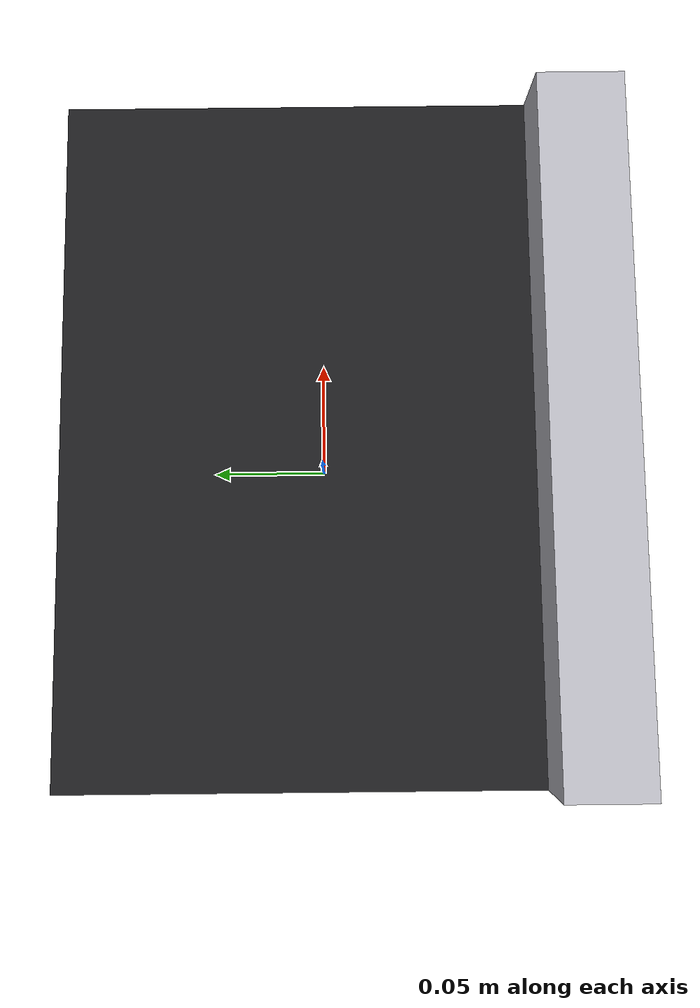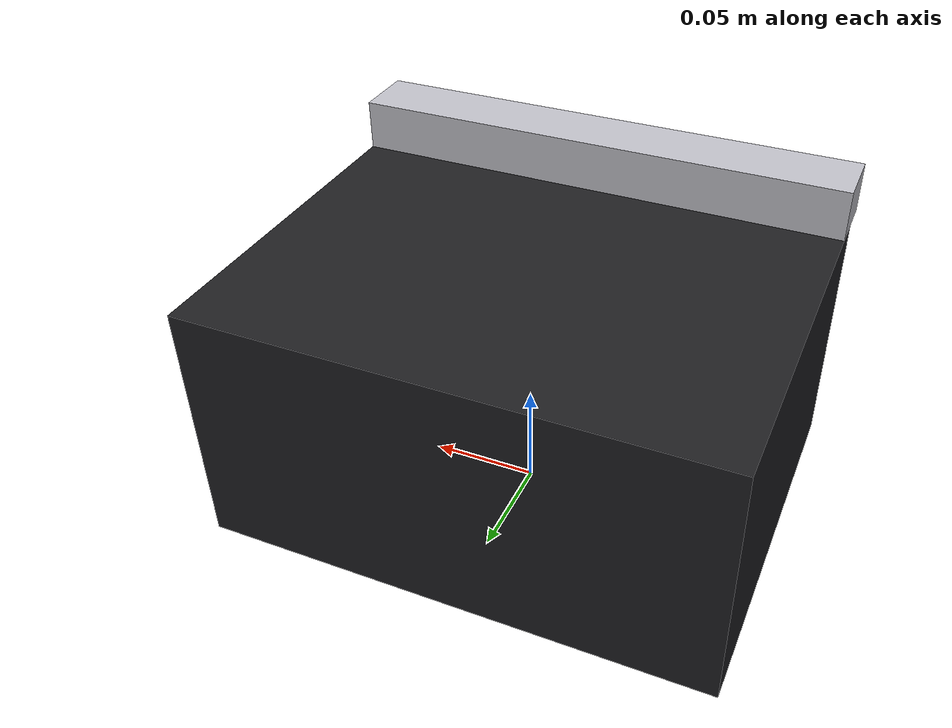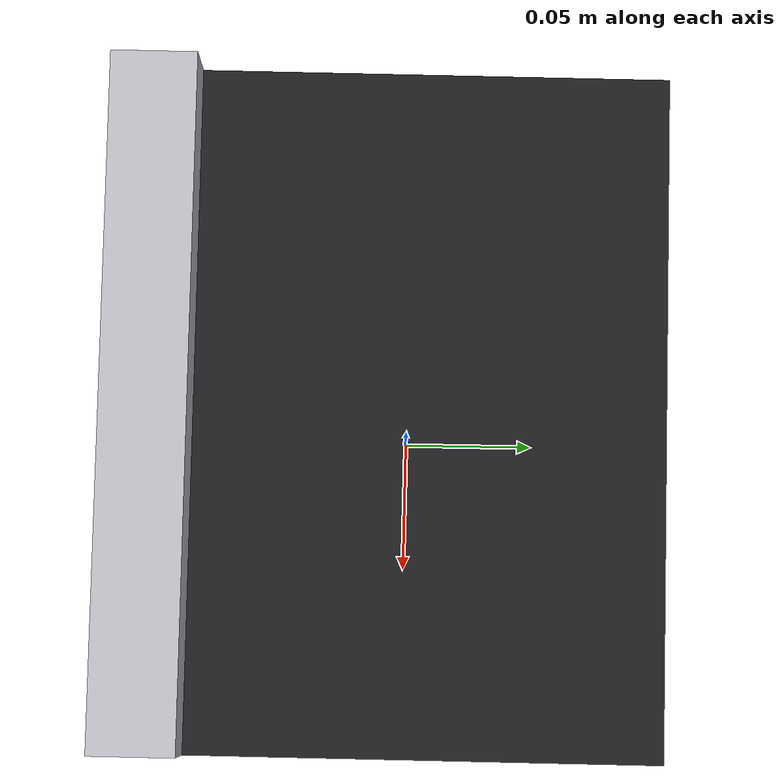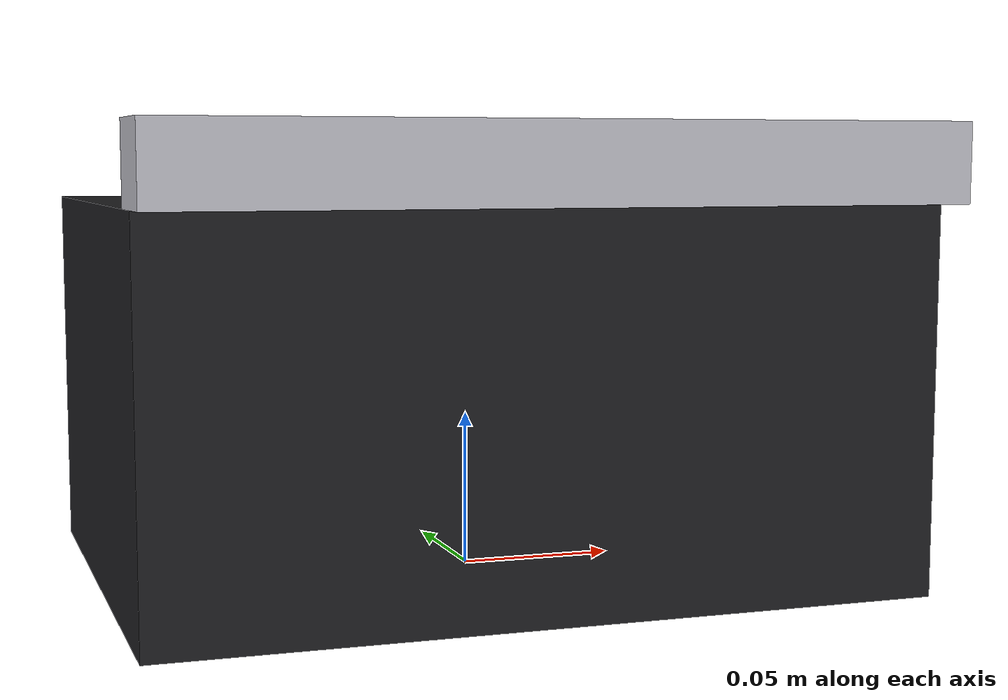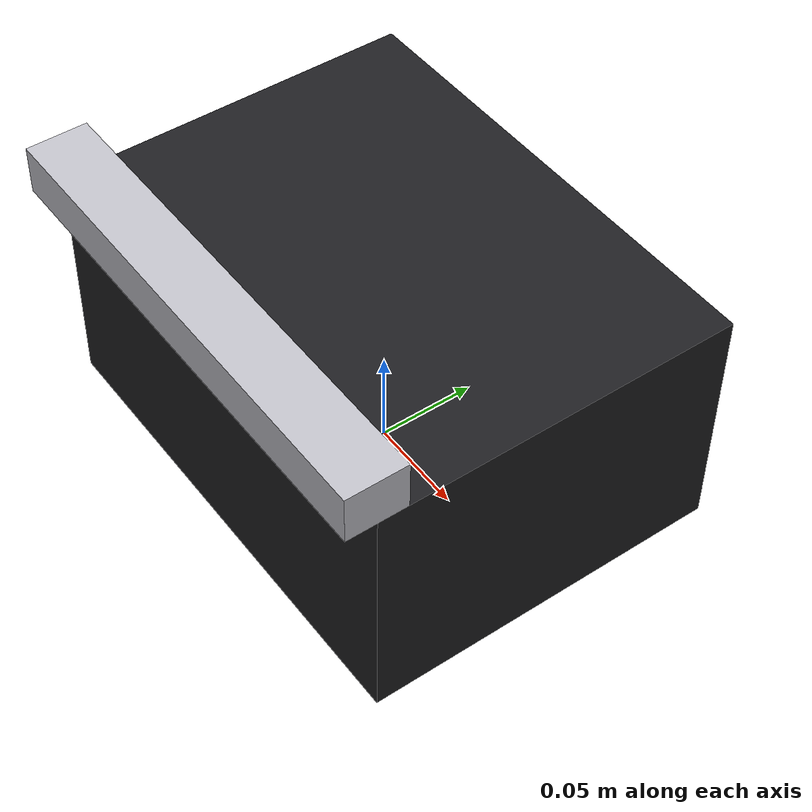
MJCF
<?xml version="1.0" encoding="utf-8"?>
<mujoco model="real_lab_waterloo_university_gel_imager">
  <compiler angle="radian" autolimits="true"/>
  <default>
    <default class="body"><geom contype="1" conaffinity="1"/></default>
  </default>
  <worldbody>
    <body name="base">
      <geom type="box" size="0.12 0.09 0.06" pos="0 0 0.06" rgba="0.12 0.12 0.13 1" class="body"/>
      <body name="lid" pos="0 -0.09 0.12">
        <joint name="lid_joint" type="hinge" axis="0 1 0" range="0 1.5" damping="0.6" frictionloss="0.25"/>
  <geom type="box" size="0.12 0.015 0.012" pos="0 0 0.012" rgba="0.75 0.75 0.78 1" class="body"/>
      </body>
    </body>
  </worldbody>
</mujoco>
